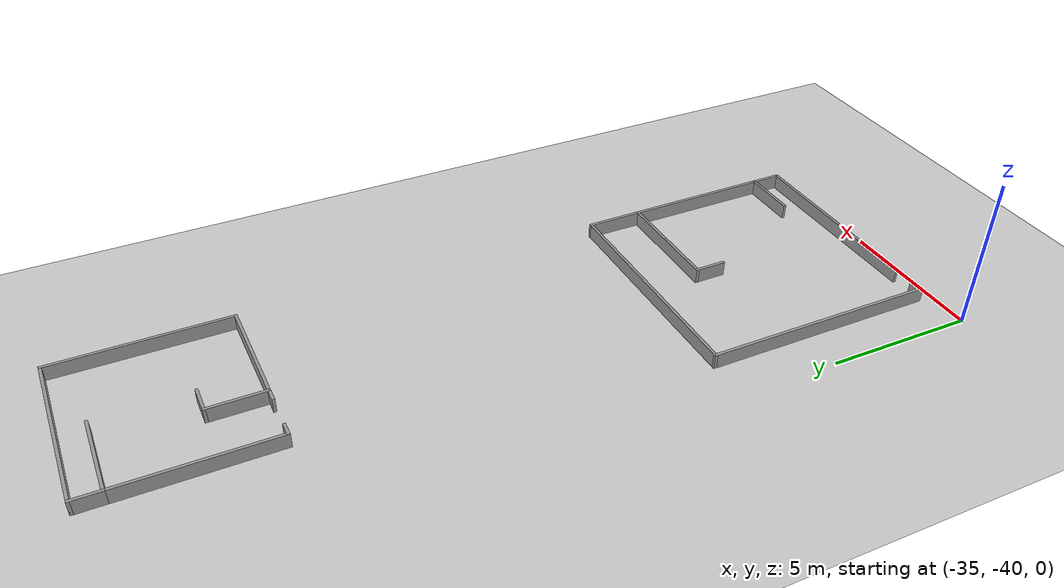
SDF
<sdf version="1.6">
 <world name="default">
  <model name="ground_plane">
   <static>1</static>
   <link name="link">
    <collision name="collision">
     <geometry><plane><normal>0 0 1</normal><size>80 80</size></plane></geometry>
     <surface>
      <contact><collide_bitmask>65535</collide_bitmask></contact>
      <friction><ode><mu>100</mu><mu2>50</mu2></ode></friction>
     </surface>
     <max_contacts>15</max_contacts>
    </collision>
    <visual name="visual">
     <cast_shadows>0</cast_shadows>
     <geometry><plane><normal>0 0 1</normal><size>80 80</size></plane></geometry>
     <material>
      <script><uri>file://media/materials/scripts/gazebo.material</uri><name>Gazebo/Grey</name></script>
     </material>
    </visual>
   </link>
  </model>
  <model name="shape6">
   <pose>-29.6 -35.5 0 0 -0 0</pose>
   <link name="Wall_0">
    <collision name="Wall_0_Collision">
     <geometry><box><size>8 0.1 0.5</size></box></geometry>
     <pose>0 0 0.25 0 -0 0</pose>
    </collision>
    <visual name="Wall_0_Visual">
     <pose>0 0 0.25 0 -0 0</pose>
     <geometry><box><size>8 0.1 0.5</size></box></geometry>
     <material>
      <script><uri>file://media/materials/scripts/gazebo.material</uri><name>Gazebo/Grey</name></script>
      <ambient>1 1 1 1</ambient>
     </material>
     <meta><layer>0</layer></meta>
    </visual>
    <pose>-3.95 0 0 0 -0 -1.5708</pose>
   </link>
   <link name="Wall_1">
    <collision name="Wall_1_Collision">
     <geometry><box><size>0.5 0.1 0.5</size></box></geometry>
     <pose>0 0 0.25 0 -0 0</pose>
    </collision>
    <visual name="Wall_1_Visual">
     <pose>0 0 0.25 0 -0 0</pose>
     <geometry><box><size>0.5 0.1 0.5</size></box></geometry>
     <material>
      <script><uri>file://media/materials/scripts/gazebo.material</uri><name>Gazebo/Grey</name></script>
      <ambient>1 1 1 1</ambient>
     </material>
     <meta><layer>0</layer></meta>
    </visual>
    <pose>-3.75 -3.95 0 0 -0 0</pose>
   </link>
   <link name="Wall_10">
    <collision name="Wall_10_Collision">
     <geometry><box><size>1.95 0.1 0.5</size></box></geometry>
     <pose>0 0 0.25 0 -0 0</pose>
    </collision>
    <visual name="Wall_10_Visual">
     <pose>0 0 0.25 0 -0 0</pose>
     <geometry><box><size>1.95 0.1 0.5</size></box></geometry>
     <material>
      <script><uri>file://media/materials/scripts/gazebo.material</uri><name>Gazebo/Grey</name></script>
      <ambient>1 1 1 1</ambient>
     </material>
     <meta><layer>0</layer></meta>
    </visual>
    <pose>3.025 -2.95 0 0 -0 3.14159</pose>
   </link>
   <link name="Wall_12">
    <collision name="Wall_12_Collision">
     <geometry><box><size>1.1 0.1 0.5</size></box></geometry>
     <pose>0 0 0.25 0 -0 0</pose>
    </collision>
    <visual name="Wall_12_Visual">
     <pose>0 0 0.25 0 -0 0</pose>
     <geometry><box><size>1.1 0.1 0.5</size></box></geometry>
     <material>
      <script><uri>file://media/materials/scripts/gazebo.material</uri><name>Gazebo/Grey</name></script>
      <ambient>1 1 1 1</ambient>
     </material>
     <meta><layer>0</layer></meta>
    </visual>
    <pose>3.95 -3.45 0 0 -0 -1.5708</pose>
   </link>
   <link name="Wall_13">
    <collision name="Wall_13_Collision">
     <geometry><box><size>6.8 0.1 0.5</size></box></geometry>
     <pose>0 0 0.25 0 -0 0</pose>
    </collision>
    <visual name="Wall_13_Visual">
     <pose>0 0 0.25 0 -0 0</pose>
     <geometry><box><size>6.8 0.1 0.5</size></box></geometry>
     <material>
      <script><uri>file://media/materials/scripts/gazebo.material</uri><name>Gazebo/Grey</name></script>
      <ambient>1 1 1 1</ambient>
     </material>
     <meta><layer>0</layer></meta>
    </visual>
    <pose>0.6 -3.95 0 0 -0 3.14159</pose>
   </link>
   <link name="Wall_3">
    <collision name="Wall_3_Collision">
     <geometry><box><size>8 0.1 0.5</size></box></geometry>
     <pose>0 0 0.25 0 -0 0</pose>
    </collision>
    <visual name="Wall_3_Visual">
     <pose>0 0 0.25 0 -0 0</pose>
     <geometry><box><size>8 0.1 0.5</size></box></geometry>
     <material>
      <script><uri>file://media/materials/scripts/gazebo.material</uri><name>Gazebo/Grey</name></script>
      <ambient>1 1 1 1</ambient>
     </material>
     <meta><layer>0</layer></meta>
    </visual>
    <pose>-0 3.95 0 0 -0 0</pose>
   </link>
   <link name="Wall_4">
    <collision name="Wall_4_Collision">
     <geometry><box><size>2 0.1 0.5</size></box></geometry>
     <pose>0 0 0.25 0 -0 0</pose>
    </collision>
    <visual name="Wall_4_Visual">
     <pose>0 0 0.25 0 -0 0</pose>
     <geometry><box><size>2 0.1 0.5</size></box></geometry>
     <material>
      <script><uri>file://media/materials/scripts/gazebo.material</uri><name>Gazebo/Grey</name></script>
      <ambient>1 1 1 1</ambient>
     </material>
     <meta><layer>0</layer></meta>
    </visual>
    <pose>3.95 3 0 0 -0 -1.5708</pose>
   </link>
   <link name="Wall_5">
    <collision name="Wall_5_Collision">
     <geometry><box><size>5.1 0.1 0.5</size></box></geometry>
     <pose>0 0 0.25 0 -0 0</pose>
    </collision>
    <visual name="Wall_5_Visual">
     <pose>0 0 0.25 0 -0 0</pose>
     <geometry><box><size>5.1 0.1 0.5</size></box></geometry>
     <material>
      <script><uri>file://media/materials/scripts/gazebo.material</uri><name>Gazebo/Grey</name></script>
      <ambient>1 1 1 1</ambient>
     </material>
     <meta><layer>0</layer></meta>
    </visual>
    <pose>3.95 -0.45 0 0 -0 -1.5708</pose>
   </link>
   <link name="Wall_7">
    <collision name="Wall_7_Collision">
     <geometry><box><size>4 0.1 0.5</size></box></geometry>
     <pose>0 0 0.25 0 -0 0</pose>
    </collision>
    <visual name="Wall_7_Visual">
     <pose>0 0 0.25 0 -0 0</pose>
     <geometry><box><size>4 0.1 0.5</size></box></geometry>
     <material>
      <script><uri>file://media/materials/scripts/gazebo.material</uri><name>Gazebo/Grey</name></script>
      <ambient>1 1 1 1</ambient>
     </material>
     <meta><layer>0</layer></meta>
    </visual>
    <pose>2 2.05 0 0 -0 3.14159</pose>
   </link>
   <link name="Wall_8">
    <collision name="Wall_8_Collision">
     <geometry><box><size>1.1 0.1 0.5</size></box></geometry>
     <pose>0 0 0.25 0 -0 0</pose>
    </collision>
    <visual name="Wall_8_Visual">
     <pose>0 0 0.25 0 -0 0</pose>
     <geometry><box><size>1.1 0.1 0.5</size></box></geometry>
     <material>
      <script><uri>file://media/materials/scripts/gazebo.material</uri><name>Gazebo/Grey</name></script>
      <ambient>1 1 1 1</ambient>
     </material>
     <meta><layer>0</layer></meta>
    </visual>
    <pose>0.05 1.55 0 0 -0 -1.5708</pose>
   </link>
   <static>1</static>
  </model>
  <model name="shape5">
   <pose>-28.4 -16 0 0 -0 0</pose>
   <link name="Wall_10">
    <collision name="Wall_10_Collision">
     <geometry><box><size>6 0.1 0.5</size></box></geometry>
     <pose>0 0 0.25 0 -0 0</pose>
    </collision>
    <visual name="Wall_10_Visual">
     <pose>0 0 0.25 0 -0 0</pose>
     <geometry><box><size>6 0.1 0.5</size></box></geometry>
     <material>
      <script><uri>file://media/materials/scripts/gazebo.material</uri><name>Gazebo/Grey</name></script>
      <ambient>1 1 1 1</ambient>
     </material>
     <meta><layer>0</layer></meta>
    </visual>
    <pose>-0 2.95 0 0 -0 0</pose>
   </link>
   <link name="Wall_11">
    <collision name="Wall_11_Collision">
     <geometry><box><size>6 0.1 0.5</size></box></geometry>
     <pose>0 0 0.25 0 -0 0</pose>
    </collision>
    <visual name="Wall_11_Visual">
     <pose>0 0 0.25 0 -0 0</pose>
     <geometry><box><size>6 0.1 0.5</size></box></geometry>
     <material>
      <script><uri>file://media/materials/scripts/gazebo.material</uri><name>Gazebo/Grey</name></script>
      <ambient>1 1 1 1</ambient>
     </material>
     <meta><layer>0</layer></meta>
    </visual>
    <pose>2.95 0 0 0 -0 -1.5708</pose>
   </link>
   <link name="Wall_12">
    <collision name="Wall_12_Collision">
     <geometry><box><size>4 0.1 0.5</size></box></geometry>
     <pose>0 0 0.25 0 -0 0</pose>
    </collision>
    <visual name="Wall_12_Visual">
     <pose>0 0 0.25 0 -0 0</pose>
     <geometry><box><size>4 0.1 0.5</size></box></geometry>
     <material>
      <script><uri>file://media/materials/scripts/gazebo.material</uri><name>Gazebo/Grey</name></script>
      <ambient>1 1 1 1</ambient>
     </material>
     <meta><layer>0</layer></meta>
    </visual>
    <pose>1 -2.95 0 0 -0 3.14159</pose>
   </link>
   <link name="Wall_13">
    <collision name="Wall_13_Collision">
     <geometry><box><size>2 0.1 0.5</size></box></geometry>
     <pose>0 0 0.25 0 -0 0</pose>
    </collision>
    <visual name="Wall_13_Visual">
     <pose>0 0 0.25 0 -0 0</pose>
     <geometry><box><size>2 0.1 0.5</size></box></geometry>
     <material>
      <script><uri>file://media/materials/scripts/gazebo.material</uri><name>Gazebo/Grey</name></script>
      <ambient>1 1 1 1</ambient>
     </material>
     <meta><layer>0</layer></meta>
    </visual>
    <pose>-0.95 -2 0 0 -0 1.5708</pose>
   </link>
   <link name="Wall_14">
    <collision name="Wall_14_Collision">
     <geometry><box><size>1.00029 0.1 0.5</size></box></geometry>
     <pose>0 0 0.25 0 -0 0</pose>
    </collision>
    <visual name="Wall_14_Visual">
     <pose>0 0 0.25 0 -0 0</pose>
     <geometry><box><size>1.00029 0.1 0.5</size></box></geometry>
     <material>
      <script><uri>file://media/materials/scripts/gazebo.material</uri><name>Gazebo/Grey</name></script>
      <ambient>1 1 1 1</ambient>
     </material>
     <meta><layer>0</layer></meta>
    </visual>
    <pose>-0.5 -1.05 0 0 -0 0</pose>
   </link>
   <link name="Wall_18">
    <collision name="Wall_18_Collision">
     <geometry><box><size>1 0.1 0.5</size></box></geometry>
     <pose>0 0 0.25 0 -0 0</pose>
    </collision>
    <visual name="Wall_18_Visual">
     <pose>0 0 0.25 0 -0 0</pose>
     <geometry><box><size>1 0.1 0.5</size></box></geometry>
     <material>
      <script><uri>file://media/materials/scripts/gazebo.material</uri><name>Gazebo/Grey</name></script>
      <ambient>1 1 1 1</ambient>
     </material>
     <meta><layer>0</layer></meta>
    </visual>
    <pose>-2.95 2.5 0 0 -0 -1.5708</pose>
   </link>
   <link name="Wall_19">
    <collision name="Wall_19_Collision">
     <geometry><box><size>3 0.1 0.5</size></box></geometry>
     <pose>0 0 0.25 0 -0 0</pose>
    </collision>
    <visual name="Wall_19_Visual">
     <pose>0 0 0.25 0 -0 0</pose>
     <geometry><box><size>3 0.1 0.5</size></box></geometry>
     <material>
      <script><uri>file://media/materials/scripts/gazebo.material</uri><name>Gazebo/Grey</name></script>
      <ambient>1 1 1 1</ambient>
     </material>
     <meta><layer>0</layer></meta>
    </visual>
    <pose>-1.5 2.05 0 0 -0 0</pose>
   </link>
   <link name="Wall_21">
    <collision name="Wall_21_Collision">
     <geometry><box><size>5.1 0.1 0.5</size></box></geometry>
     <pose>0 0 0.25 0 -0 0</pose>
    </collision>
    <visual name="Wall_21_Visual">
     <pose>0 0 0.25 0 -0 0</pose>
     <geometry><box><size>5.1 0.1 0.5</size></box></geometry>
     <material>
      <script><uri>file://media/materials/scripts/gazebo.material</uri><name>Gazebo/Grey</name></script>
      <ambient>1 1 1 1</ambient>
     </material>
     <meta><layer>0</layer></meta>
    </visual>
    <pose>-2.95 -0.45 0 0 -0 -1.5708</pose>
   </link>
   <link name="Wall_22">
    <collision name="Wall_22_Collision">
     <geometry><box><size>0.5 0.1 0.5</size></box></geometry>
     <pose>0 0 0.25 0 -0 0</pose>
    </collision>
    <visual name="Wall_22_Visual">
     <pose>0 0 0.25 0 -0 0</pose>
     <geometry><box><size>0.5 0.1 0.5</size></box></geometry>
     <material>
      <script><uri>file://media/materials/scripts/gazebo.material</uri><name>Gazebo/Grey</name></script>
      <ambient>1 1 1 1</ambient>
     </material>
     <meta><layer>0</layer></meta>
    </visual>
    <pose>-2.75 -2.95 0 0 -0 0</pose>
   </link>
   <link name="Wall_24">
    <collision name="Wall_24_Collision">
     <geometry><box><size>0.5 0.1 0.5</size></box></geometry>
     <pose>0 0 0.25 0 -0 0</pose>
    </collision>
    <visual name="Wall_24_Visual">
     <pose>0 0 0.25 0 -0 0</pose>
     <geometry><box><size>0.5 0.1 0.5</size></box></geometry>
     <material>
      <script><uri>file://media/materials/scripts/gazebo.material</uri><name>Gazebo/Grey</name></script>
      <ambient>1 1 1 1</ambient>
     </material>
     <meta><layer>0</layer></meta>
    </visual>
    <pose>-1.15 -2.95 0 0 -0 3.14159</pose>
   </link>
   <static>1</static>
  </model>
 </world>
</sdf>
